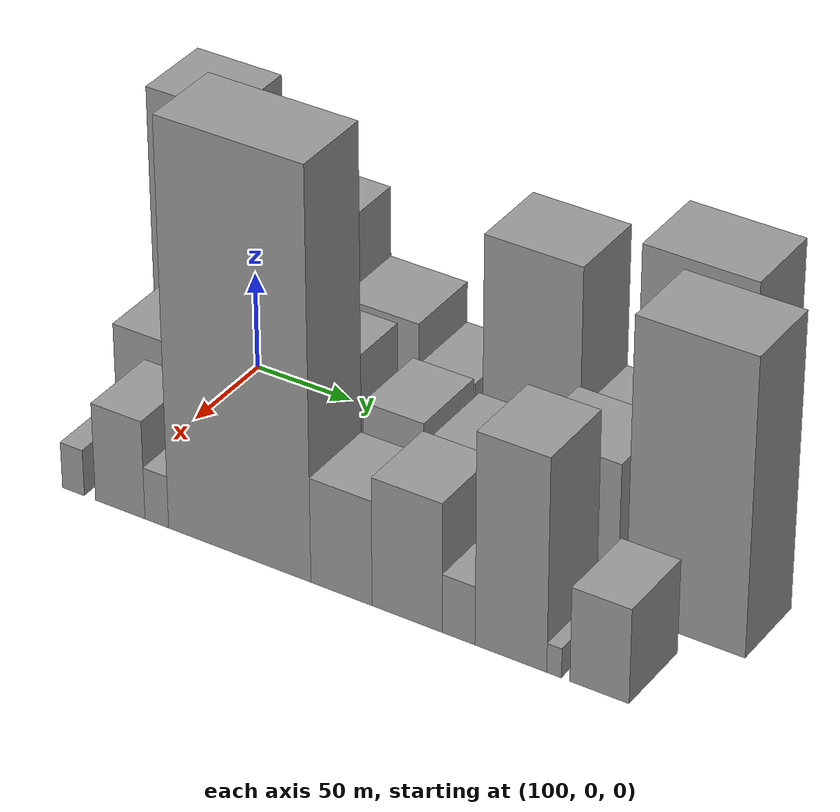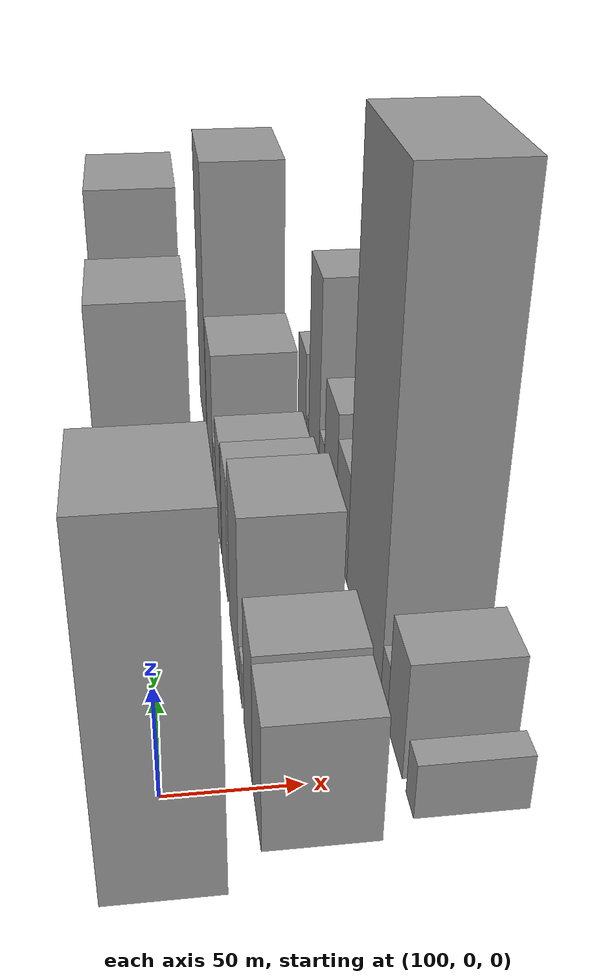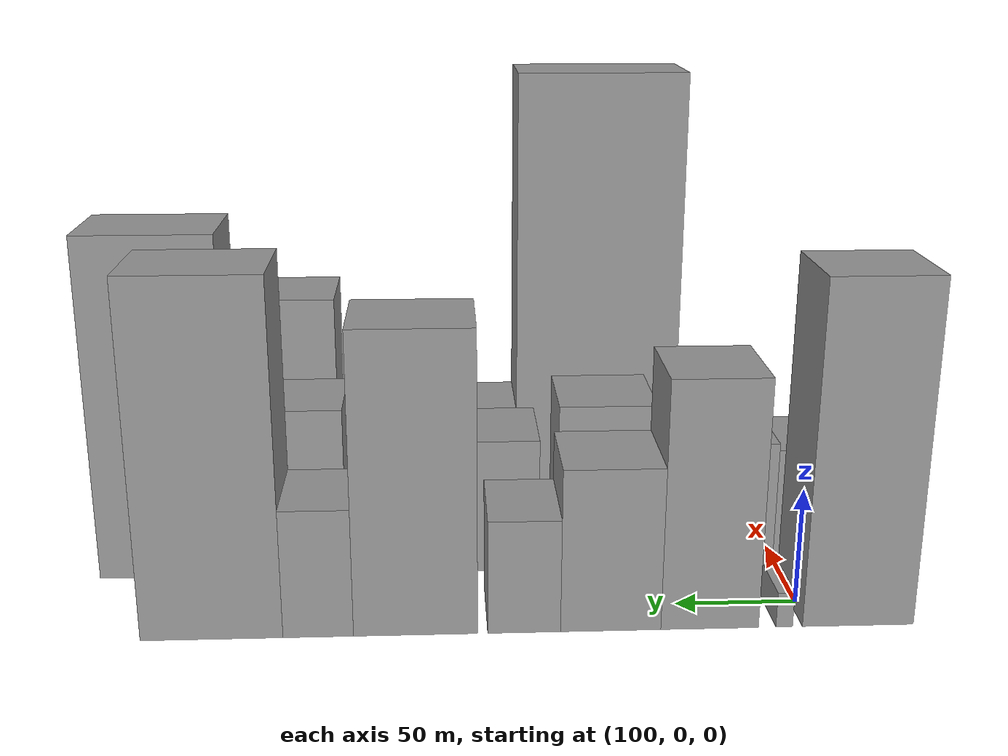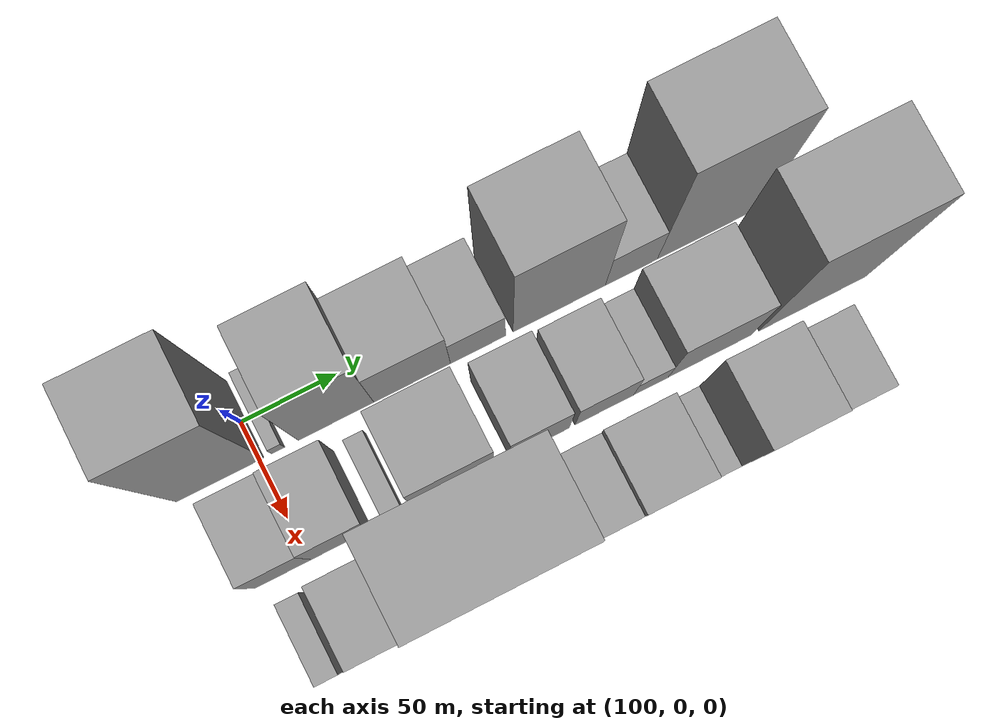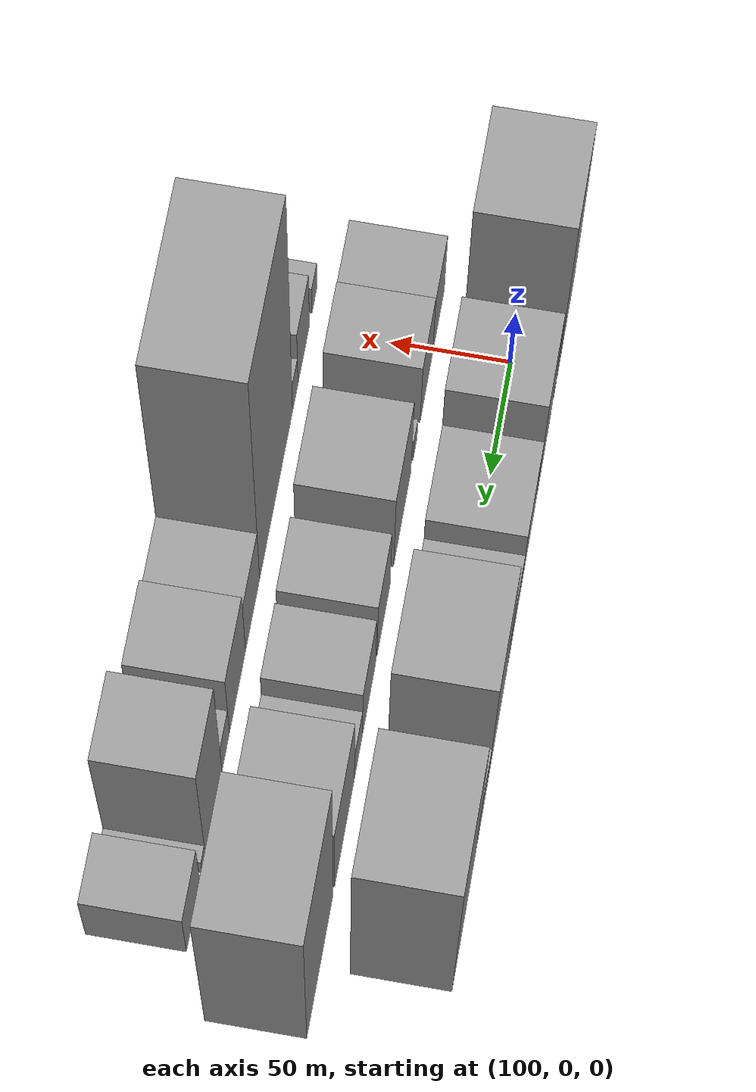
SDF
<sdf version="1.6">
 <world name="default">
  <model name="building_18">
   <static>1</static>
   <pose>100.0000 -19.7245 0 0.000000 0.000000 0.000000</pose>
   <link name="link">
    <pose>0 0 72.00 0 0 0</pose>
    <collision name="collision"><geometry><box><size>40.0000 44.7270 144.0000</size></box></geometry></collision>
    <visual name="visual">
     <cast_shadows>0</cast_shadows>
     <geometry><box><size>40.0000 44.7270 144.0000</size></box></geometry>
     <material>
      <script>
       <uri>model://grey_wall/materials/scripts</uri>
       <uri>model://grey_wall/materials/textures</uri>
       <name>vrc/grey_wall</name>
      </script>
     </material>
    </visual>
   </link>
  </model>
  <model name="building_19">
   <static>1</static>
   <pose>100.0000 9.9743 0 0.000000 0.000000 0.000000</pose>
   <link name="link">
    <pose>0 0 7.50 0 0 0</pose>
    <collision name="collision"><geometry><box><size>40.0000 6.6705 15.0000</size></box></geometry></collision>
    <visual name="visual">
     <cast_shadows>0</cast_shadows>
     <geometry><box><size>40.0000 6.6705 15.0000</size></box></geometry>
     <material>
      <script>
       <uri>model://grey_wall/materials/scripts</uri>
       <uri>model://grey_wall/materials/textures</uri>
       <name>vrc/grey_wall</name>
      </script>
     </material>
    </visual>
   </link>
  </model>
  <model name="building_20">
   <static>1</static>
   <pose>100.0000 39.8482 0 0.000000 0.000000 0.000000</pose>
   <link name="link">
    <pose>0 0 52.50 0 0 0</pose>
    <collision name="collision"><geometry><box><size>40.0000 39.0774 105.0000</size></box></geometry></collision>
    <visual name="visual">
     <cast_shadows>0</cast_shadows>
     <geometry><box><size>40.0000 39.0774 105.0000</size></box></geometry>
     <material>
      <script>
       <uri>model://grey_wall/materials/scripts</uri>
       <uri>model://grey_wall/materials/textures</uri>
       <name>vrc/grey_wall</name>
      </script>
     </material>
    </visual>
   </link>
  </model>
  <model name="building_21">
   <static>1</static>
   <pose>100.0000 79.3136 0 0.000000 0.000000 0.000000</pose>
   <link name="link">
    <pose>0 0 34.50 0 0 0</pose>
    <collision name="collision"><geometry><box><size>40.0000 39.8534 69.0000</size></box></geometry></collision>
    <visual name="visual">
     <cast_shadows>0</cast_shadows>
     <geometry><box><size>40.0000 39.8534 69.0000</size></box></geometry>
     <material>
      <script>
       <uri>model://grey_wall/materials/scripts</uri>
       <uri>model://grey_wall/materials/textures</uri>
       <name>vrc/grey_wall</name>
      </script>
     </material>
    </visual>
   </link>
  </model>
  <model name="building_22">
   <static>1</static>
   <pose>100.0000 113.6267 0 0.000000 0.000000 0.000000</pose>
   <link name="link">
    <pose>0 0 24.00 0 0 0</pose>
    <collision name="collision"><geometry><box><size>40.0000 28.7727 48.0000</size></box></geometry></collision>
    <visual name="visual">
     <cast_shadows>0</cast_shadows>
     <geometry><box><size>40.0000 28.7727 48.0000</size></box></geometry>
     <material>
      <script>
       <uri>model://grey_wall/materials/scripts</uri>
       <uri>model://grey_wall/materials/textures</uri>
       <name>vrc/grey_wall</name>
      </script>
     </material>
    </visual>
   </link>
  </model>
  <model name="building_23">
   <static>1</static>
   <pose>100.0000 156.3978 0 0.000000 0.000000 0.000000</pose>
   <link name="link">
    <pose>0 0 63.00 0 0 0</pose>
    <collision name="collision"><geometry><box><size>40.0000 48.7695 126.0000</size></box></geometry></collision>
    <visual name="visual">
     <cast_shadows>0</cast_shadows>
     <geometry><box><size>40.0000 48.7695 126.0000</size></box></geometry>
     <material>
      <script>
       <uri>model://grey_wall/materials/scripts</uri>
       <uri>model://grey_wall/materials/textures</uri>
       <name>vrc/grey_wall</name>
      </script>
     </material>
    </visual>
   </link>
  </model>
  <model name="building_24">
   <static>1</static>
   <pose>100.0000 194.5604 0 0.000000 0.000000 0.000000</pose>
   <link name="link">
    <pose>0 0 27.00 0 0 0</pose>
    <collision name="collision"><geometry><box><size>40.0000 27.5558 54.0000</size></box></geometry></collision>
    <visual name="visual">
     <cast_shadows>0</cast_shadows>
     <geometry><box><size>40.0000 27.5558 54.0000</size></box></geometry>
     <material>
      <script>
       <uri>model://grey_wall/materials/scripts</uri>
       <uri>model://grey_wall/materials/textures</uri>
       <name>vrc/grey_wall</name>
      </script>
     </material>
    </visual>
   </link>
  </model>
  <model name="building_25">
   <static>1</static>
   <pose>100.0000 236.0614 0 0.000000 0.000000 0.000000</pose>
   <link name="link">
    <pose>0 0 73.50 0 0 0</pose>
    <collision name="collision"><geometry><box><size>40.0000 55.4461 147.0000</size></box></geometry></collision>
    <visual name="visual">
     <cast_shadows>0</cast_shadows>
     <geometry><box><size>40.0000 55.4461 147.0000</size></box></geometry>
     <material>
      <script>
       <uri>model://grey_wall/materials/scripts</uri>
       <uri>model://grey_wall/materials/textures</uri>
       <name>vrc/grey_wall</name>
      </script>
     </material>
    </visual>
   </link>
  </model>
  <model name="building_54">
   <static>1</static>
   <pose>152.0000 -12.6384 0 0.000000 0.000000 0.000000</pose>
   <link name="link">
    <pose>0 0 27.00 0 0 0</pose>
    <collision name="collision"><geometry><box><size>40.0000 28.6844 54.0000</size></box></geometry></collision>
    <visual name="visual">
     <cast_shadows>0</cast_shadows>
     <geometry><box><size>40.0000 28.6844 54.0000</size></box></geometry>
     <material>
      <script>
       <uri>model://grey_wall/materials/scripts</uri>
       <uri>model://grey_wall/materials/textures</uri>
       <name>vrc/grey_wall</name>
      </script>
     </material>
    </visual>
   </link>
  </model>
  <model name="building_55">
   <static>1</static>
   <pose>152.0000 17.1598 0 0.000000 0.000000 0.000000</pose>
   <link name="link">
    <pose>0 0 28.50 0 0 0</pose>
    <collision name="collision"><geometry><box><size>40.0000 30.9120 57.0000</size></box></geometry></collision>
    <visual name="visual">
     <cast_shadows>0</cast_shadows>
     <geometry><box><size>40.0000 30.9120 57.0000</size></box></geometry>
     <material>
      <script>
       <uri>model://grey_wall/materials/scripts</uri>
       <uri>model://grey_wall/materials/textures</uri>
       <name>vrc/grey_wall</name>
      </script>
     </material>
    </visual>
   </link>
  </model>
  <model name="building_56">
   <static>1</static>
   <pose>152.0000 44.6072 0 0.000000 0.000000 0.000000</pose>
   <link name="link">
    <pose>0 0 10.50 0 0 0</pose>
    <collision name="collision"><geometry><box><size>40.0000 9.9827 21.0000</size></box></geometry></collision>
    <visual name="visual">
     <cast_shadows>0</cast_shadows>
     <geometry><box><size>40.0000 9.9827 21.0000</size></box></geometry>
     <material>
      <script>
       <uri>model://grey_wall/materials/scripts</uri>
       <uri>model://grey_wall/materials/textures</uri>
       <name>vrc/grey_wall</name>
      </script>
     </material>
    </visual>
   </link>
  </model>
  <model name="building_57">
   <static>1</static>
   <pose>152.0000 75.2564 0 0.000000 0.000000 0.000000</pose>
   <link name="link">
    <pose>0 0 37.50 0 0 0</pose>
    <collision name="collision"><geometry><box><size>40.0000 41.3159 75.0000</size></box></geometry></collision>
    <visual name="visual">
     <cast_shadows>0</cast_shadows>
     <geometry><box><size>40.0000 41.3159 75.0000</size></box></geometry>
     <material>
      <script>
       <uri>model://grey_wall/materials/scripts</uri>
       <uri>model://grey_wall/materials/textures</uri>
       <name>vrc/grey_wall</name>
      </script>
     </material>
    </visual>
   </link>
  </model>
  <model name="building_58">
   <static>1</static>
   <pose>152.0000 119.2833 0 0.000000 0.000000 0.000000</pose>
   <link name="link">
    <pose>0 0 30.00 0 0 0</pose>
    <collision name="collision"><geometry><box><size>40.0000 30.7379 60.0000</size></box></geometry></collision>
    <visual name="visual">
     <cast_shadows>0</cast_shadows>
     <geometry><box><size>40.0000 30.7379 60.0000</size></box></geometry>
     <material>
      <script>
       <uri>model://grey_wall/materials/scripts</uri>
       <uri>model://grey_wall/materials/textures</uri>
       <name>vrc/grey_wall</name>
      </script>
     </material>
    </visual>
   </link>
  </model>
  <model name="building_59">
   <static>1</static>
   <pose>152.0000 153.0333 0 0.000000 0.000000 0.000000</pose>
   <link name="link">
    <pose>0 0 27.00 0 0 0</pose>
    <collision name="collision"><geometry><box><size>40.0000 30.7620 54.0000</size></box></geometry></collision>
    <visual name="visual">
     <cast_shadows>0</cast_shadows>
     <geometry><box><size>40.0000 30.7620 54.0000</size></box></geometry>
     <material>
      <script>
       <uri>model://grey_wall/materials/scripts</uri>
       <uri>model://grey_wall/materials/textures</uri>
       <name>vrc/grey_wall</name>
      </script>
     </material>
    </visual>
   </link>
  </model>
  <model name="building_60">
   <static>1</static>
   <pose>152.0000 177.4689 0 0.000000 0.000000 0.000000</pose>
   <link name="link">
    <pose>0 0 16.50 0 0 0</pose>
    <collision name="collision"><geometry><box><size>40.0000 18.1092 33.0000</size></box></geometry></collision>
    <visual name="visual">
     <cast_shadows>0</cast_shadows>
     <geometry><box><size>40.0000 18.1092 33.0000</size></box></geometry>
     <material>
      <script>
       <uri>model://grey_wall/materials/scripts</uri>
       <uri>model://grey_wall/materials/textures</uri>
       <name>vrc/grey_wall</name>
      </script>
     </material>
    </visual>
   </link>
  </model>
  <model name="building_61">
   <static>1</static>
   <pose>152.0000 208.6309 0 0.000000 0.000000 0.000000</pose>
   <link name="link">
    <pose>0 0 37.50 0 0 0</pose>
    <collision name="collision"><geometry><box><size>40.0000 44.2148 75.0000</size></box></geometry></collision>
    <visual name="visual">
     <cast_shadows>0</cast_shadows>
     <geometry><box><size>40.0000 44.2148 75.0000</size></box></geometry>
     <material>
      <script>
       <uri>model://grey_wall/materials/scripts</uri>
       <uri>model://grey_wall/materials/textures</uri>
       <name>vrc/grey_wall</name>
      </script>
     </material>
    </visual>
   </link>
  </model>
  <model name="building_62">
   <static>1</static>
   <pose>152.0000 263.2704 0 0.000000 0.000000 0.000000</pose>
   <link name="link">
    <pose>0 0 75.00 0 0 0</pose>
    <collision name="collision"><geometry><box><size>40.0000 57.0642 150.0000</size></box></geometry></collision>
    <visual name="visual">
     <cast_shadows>0</cast_shadows>
     <geometry><box><size>40.0000 57.0642 150.0000</size></box></geometry>
     <material>
      <script>
       <uri>model://grey_wall/materials/scripts</uri>
       <uri>model://grey_wall/materials/textures</uri>
       <name>vrc/grey_wall</name>
      </script>
     </material>
    </visual>
   </link>
  </model>
  <model name="building_88">
   <static>1</static>
   <pose>204.0000 -13.3719 0 0.000000 0.000000 0.000000</pose>
   <link name="link">
    <pose>0 0 12.00 0 0 0</pose>
    <collision name="collision"><geometry><box><size>40.0000 11.7182 24.0000</size></box></geometry></collision>
    <visual name="visual">
     <cast_shadows>0</cast_shadows>
     <geometry><box><size>40.0000 11.7182 24.0000</size></box></geometry>
     <material>
      <script>
       <uri>model://grey_wall/materials/scripts</uri>
       <uri>model://grey_wall/materials/textures</uri>
       <name>vrc/grey_wall</name>
      </script>
     </material>
    </visual>
   </link>
  </model>
  <model name="building_89">
   <static>1</static>
   <pose>204.0000 11.6307 0 0.000000 0.000000 0.000000</pose>
   <link name="link">
    <pose>0 0 25.50 0 0 0</pose>
    <collision name="collision"><geometry><box><size>40.0000 26.2870 51.0000</size></box></geometry></collision>
    <visual name="visual">
     <cast_shadows>0</cast_shadows>
     <geometry><box><size>40.0000 26.2870 51.0000</size></box></geometry>
     <material>
      <script>
       <uri>model://grey_wall/materials/scripts</uri>
       <uri>model://grey_wall/materials/textures</uri>
       <name>vrc/grey_wall</name>
      </script>
     </material>
    </visual>
   </link>
  </model>
  <model name="building_90">
   <static>1</static>
   <pose>204.0000 30.9941 0 0.000000 0.000000 0.000000</pose>
   <link name="link">
    <pose>0 0 13.50 0 0 0</pose>
    <collision name="collision"><geometry><box><size>40.0000 12.4397 27.0000</size></box></geometry></collision>
    <visual name="visual">
     <cast_shadows>0</cast_shadows>
     <geometry><box><size>40.0000 12.4397 27.0000</size></box></geometry>
     <material>
      <script>
       <uri>model://grey_wall/materials/scripts</uri>
       <uri>model://grey_wall/materials/textures</uri>
       <name>vrc/grey_wall</name>
      </script>
     </material>
    </visual>
   </link>
  </model>
  <model name="building_91">
   <static>1</static>
   <pose>204.0000 73.9852 0 0.000000 0.000000 0.000000</pose>
   <link name="link">
    <pose>0 0 103.50 0 0 0</pose>
    <collision name="collision"><geometry><box><size>40.0000 73.5426 207.0000</size></box></geometry></collision>
    <visual name="visual">
     <cast_shadows>0</cast_shadows>
     <geometry><box><size>40.0000 73.5426 207.0000</size></box></geometry>
     <material>
      <script>
       <uri>model://grey_wall/materials/scripts</uri>
       <uri>model://grey_wall/materials/textures</uri>
       <name>vrc/grey_wall</name>
      </script>
     </material>
    </visual>
   </link>
  </model>
  <model name="building_92">
   <static>1</static>
   <pose>204.0000 126.1771 0 0.000000 0.000000 0.000000</pose>
   <link name="link">
    <pose>0 0 27.00 0 0 0</pose>
    <collision name="collision"><geometry><box><size>40.0000 30.8412 54.0000</size></box></geometry></collision>
    <visual name="visual">
     <cast_shadows>0</cast_shadows>
     <geometry><box><size>40.0000 30.8412 54.0000</size></box></geometry>
     <material>
      <script>
       <uri>model://grey_wall/materials/scripts</uri>
       <uri>model://grey_wall/materials/textures</uri>
       <name>vrc/grey_wall</name>
      </script>
     </material>
    </visual>
   </link>
  </model>
  <model name="building_93">
   <static>1</static>
   <pose>204.0000 158.9392 0 0.000000 0.000000 0.000000</pose>
   <link name="link">
    <pose>0 0 33.00 0 0 0</pose>
    <collision name="collision"><geometry><box><size>40.0000 34.6830 66.0000</size></box></geometry></collision>
    <visual name="visual">
     <cast_shadows>0</cast_shadows>
     <geometry><box><size>40.0000 34.6830 66.0000</size></box></geometry>
     <material>
      <script>
       <uri>model://grey_wall/materials/scripts</uri>
       <uri>model://grey_wall/materials/textures</uri>
       <name>vrc/grey_wall</name>
      </script>
     </material>
    </visual>
   </link>
  </model>
  <model name="building_94">
   <static>1</static>
   <pose>204.0000 184.3634 0 0.000000 0.000000 0.000000</pose>
   <link name="link">
    <pose>0 0 15.00 0 0 0</pose>
    <collision name="collision"><geometry><box><size>40.0000 16.1654 30.0000</size></box></geometry></collision>
    <visual name="visual">
     <cast_shadows>0</cast_shadows>
     <geometry><box><size>40.0000 16.1654 30.0000</size></box></geometry>
     <material>
      <script>
       <uri>model://grey_wall/materials/scripts</uri>
       <uri>model://grey_wall/materials/textures</uri>
       <name>vrc/grey_wall</name>
      </script>
     </material>
    </visual>
   </link>
  </model>
  <model name="building_95">
   <static>1</static>
   <pose>204.0000 209.8418 0 0.000000 0.000000 0.000000</pose>
   <link name="link">
    <pose>0 0 54.00 0 0 0</pose>
    <collision name="collision"><geometry><box><size>40.0000 34.7915 108.0000</size></box></geometry></collision>
    <visual name="visual">
     <cast_shadows>0</cast_shadows>
     <geometry><box><size>40.0000 34.7915 108.0000</size></box></geometry>
     <material>
      <script>
       <uri>model://grey_wall/materials/scripts</uri>
       <uri>model://grey_wall/materials/textures</uri>
       <name>vrc/grey_wall</name>
      </script>
     </material>
    </visual>
   </link>
  </model>
  <model name="building_96">
   <static>1</static>
   <pose>204.0000 230.7332 0 0.000000 0.000000 0.000000</pose>
   <link name="link">
    <pose>0 0 7.50 0 0 0</pose>
    <collision name="collision"><geometry><box><size>40.0000 6.9913 15.0000</size></box></geometry></collision>
    <visual name="visual">
     <cast_shadows>0</cast_shadows>
     <geometry><box><size>40.0000 6.9913 15.0000</size></box></geometry>
     <material>
      <script>
       <uri>model://grey_wall/materials/scripts</uri>
       <uri>model://grey_wall/materials/textures</uri>
       <name>vrc/grey_wall</name>
      </script>
     </material>
    </visual>
   </link>
  </model>
  <model name="building_97">
   <static>1</static>
   <pose>204.0000 252.2901 0 0.000000 0.000000 0.000000</pose>
   <link name="link">
    <pose>0 0 24.00 0 0 0</pose>
    <collision name="collision"><geometry><box><size>40.0000 28.1225 48.0000</size></box></geometry></collision>
    <visual name="visual">
     <cast_shadows>0</cast_shadows>
     <geometry><box><size>40.0000 28.1225 48.0000</size></box></geometry>
     <material>
      <script>
       <uri>model://grey_wall/materials/scripts</uri>
       <uri>model://grey_wall/materials/textures</uri>
       <name>vrc/grey_wall</name>
      </script>
     </material>
    </visual>
   </link>
  </model>
 </world>
</sdf>
